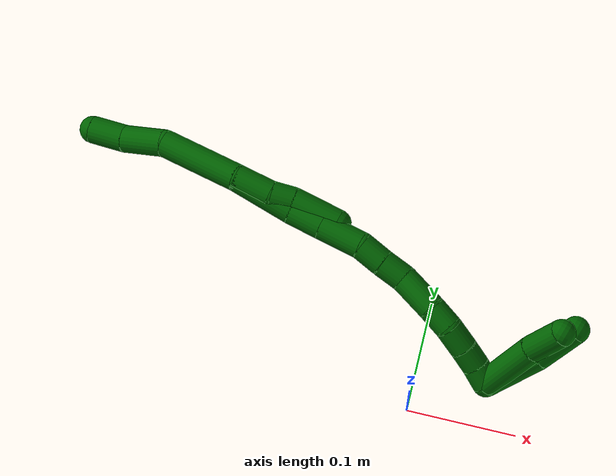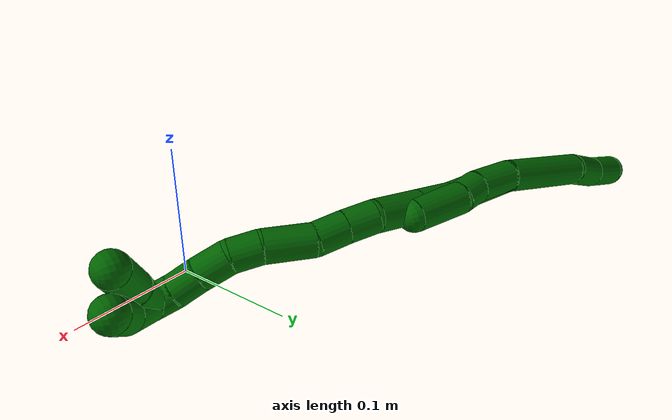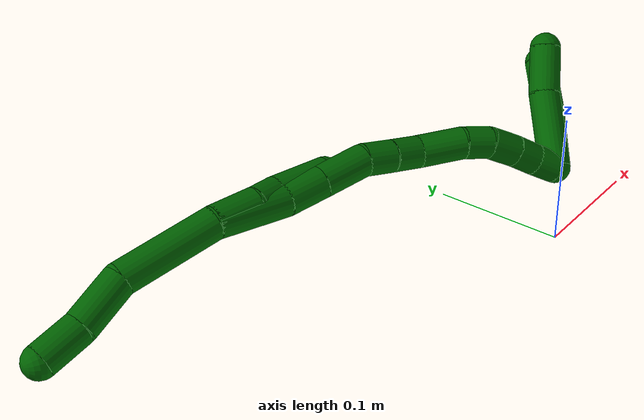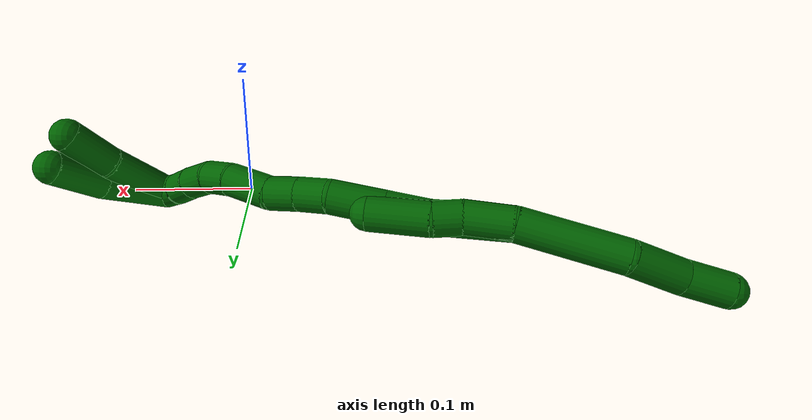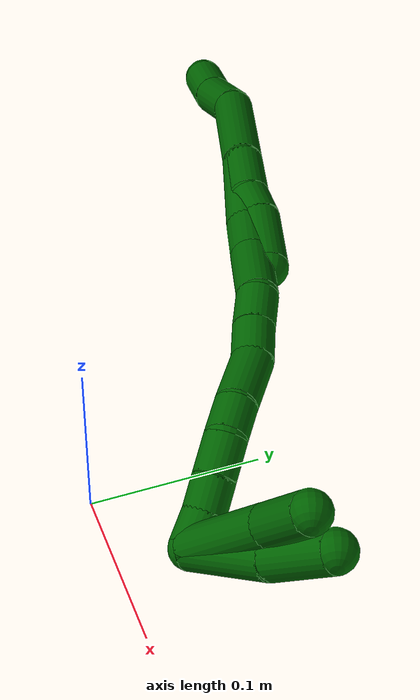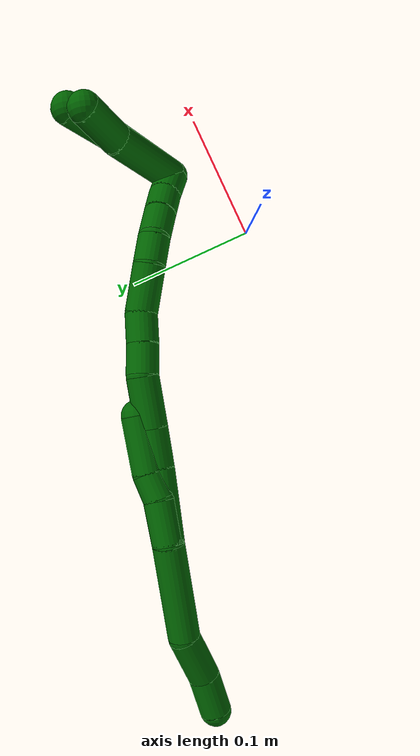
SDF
<sdf version="1.7">
 <world name="default">
  <model name="photoneo_s_sensor">
   <static>1</static>
   <pose>0 0 2 1.57079 1.57079 3.14159</pose>
   <link name="link">
    <inertial><mass>0.1</mass></inertial>
    <sensor name="sensor" type="depth">
     <update_rate>30</update_rate>
     <camera>
      <horizontal_fov>1.22</horizontal_fov>
      <image><width>1920</width><height>1200</height><format>B8G8R8</format></image>
      <clip><near>0.1</near><far>4</far></clip>
      <depth_camera><output>points</output></depth_camera>
     </camera>
     <plugin name="camera_plugin" filename="libgazebo_ros_depth_camera.so">
      <baseline>0.2</baseline>
      <alwaysOn>1</alwaysOn>
      <updateRate>0.0</updateRate>
      <cameraName>camera_ir</cameraName>
      <imageTopicName>/camera/color/image_raw</imageTopicName>
      <cameraInfoTopicName>/camera/color/camera_info</cameraInfoTopicName>
      <depthImageTopicName>/camera/depth/image_raw</depthImageTopicName>
      <depthImageCameraInfoTopicName>/camera/depth/camera_info</depthImageCameraInfoTopicName>
      <pointCloudTopicName>/camera/depth/points</pointCloudTopicName>
      <frameName>fr_optical</frameName>
      <pointCloudCutoff>0.1</pointCloudCutoff>
      <pointCloudCutoffMax>2.0</pointCloudCutoffMax>
      <distortionK1>0</distortionK1>
      <distortionK2>0</distortionK2>
      <distortionK3>0</distortionK3>
      <distortionT1>0</distortionT1>
      <distortionT2>0</distortionT2>
      <CxPrime>0</CxPrime>
      <Cx>0</Cx>
      <Cy>0</Cy>
      <focalLength>0</focalLength>
      <hackBaseline>0</hackBaseline>
     </plugin>
    </sensor>
   </link>
  </model>
  <model name="bin">
   <static>1</static>
   <link name="bottom">
    <collision name="collision-bottom">
     <pose>0 0 -0.01 0 -0 0</pose>
     <geometry><box><size>0.8 0.6 0.02</size></box></geometry>
     <surface>
      <friction><ode><mu>100</mu><mu2>100</mu2></ode></friction>
      <contact><collide_bitmask>65535</collide_bitmask></contact>
     </surface>
    </collision>
   </link>
   <link name="west_wall">
    <collision name="collision-west_wall">
     <pose>-0.41 0 0.1 0 -0 0</pose>
     <geometry><box><size>0.02 0.6 0.2</size></box></geometry>
     <surface>
      <friction><ode><mu>100</mu><mu2>100</mu2></ode></friction>
      <contact><collide_bitmask>65535</collide_bitmask></contact>
     </surface>
    </collision>
   </link>
   <link name="east_wall">
    <collision name="collision-east_wall">
     <pose>0.41 0 0.1 0 -0 0</pose>
     <geometry><box><size>0.02 0.6 0.2</size></box></geometry>
     <surface>
      <friction><ode><mu>100</mu><mu2>100</mu2></ode></friction>
      <contact><collide_bitmask>65535</collide_bitmask></contact>
     </surface>
    </collision>
   </link>
   <link name="south_wall">
    <collision name="collision-south_wall">
     <pose>0 -0.31 0.1 0 -0 0</pose>
     <geometry><box><size>0.8 0.02 0.2</size></box></geometry>
     <surface>
      <friction><ode><mu>100</mu><mu2>100</mu2></ode></friction>
      <contact><collide_bitmask>65535</collide_bitmask></contact>
     </surface>
    </collision>
   </link>
   <link name="north_wall">
    <collision name="collision-north_wall">
     <pose>0 0.31 0.1 0 -0 0</pose>
     <geometry><box><size>0.8 0.02 0.2</size></box></geometry>
     <surface>
      <friction><ode><mu>100</mu><mu2>100</mu2></ode></friction>
      <contact><collide_bitmask>65535</collide_bitmask></contact>
     </surface>
    </collision>
   </link>
  </model>
  <model name="6">
   <static>0</static>
   <link name="6">
    <collision name="collision-cylinder-e_1_2_8">
     <pose>-0.007417 0.006005 0.036634 -0.162486 -0.197194 0.016108</pose>
     <geometry><cylinder><radius>0.0125</radius><length>0.075712</length></cylinder></geometry>
     <surface>
      <friction><ode><mu>1.16</mu><mu2>1.16</mu2><slip1>0</slip1><slip2>0</slip2></ode></friction>
      <contact><ode><kp>1e+06</kp><kd>1</kd><max_vel>0</max_vel><min_depth>0.001</min_depth></ode></contact>
     </surface>
    </collision>
    <visual name="visual-cylinder-e_1_2_8">
     <pose>-0.007417 0.006005 0.036634 -0.162486 -0.197194 0.016108</pose>
     <geometry><cylinder><radius>0.0125</radius><length>0.075712</length></cylinder></geometry>
     <material><ambient>0 0.392157 0.003922 1</ambient></material>
    </visual>
    <collision name="collision-cylinder-e_2_8_9">
     <pose>-0.025252 0.014752 0.090674 -0.156201 -0.533965 0.042804</pose>
     <geometry><cylinder><radius>0.0125</radius><length>0.040942</length></cylinder></geometry>
     <surface>
      <friction><ode><mu>1.16</mu><mu2>1.16</mu2><slip1>0</slip1><slip2>0</slip2></ode></friction>
      <contact><ode><kp>1e+06</kp><kd>1</kd><max_vel>0</max_vel><min_depth>0.001</min_depth></ode></contact>
     </surface>
    </collision>
    <visual name="visual-cylinder-e_2_8_9">
     <pose>-0.025252 0.014752 0.090674 -0.156201 -0.533965 0.042804</pose>
     <geometry><cylinder><radius>0.0125</radius><length>0.040942</length></cylinder></geometry>
     <material><ambient>0 0.392157 0.003922 1</ambient></material>
    </visual>
    <collision name="collision-cylinder-e_3_9_6">
     <pose>-0.041492 0.019417 0.123586 -0.123406 -0.35666 0.022271</pose>
     <geometry><cylinder><radius>0.0125</radius><length>0.033345</length></cylinder></geometry>
     <surface>
      <friction><ode><mu>1.16</mu><mu2>1.16</mu2><slip1>0</slip1><slip2>0</slip2></ode></friction>
      <contact><ode><kp>1e+06</kp><kd>1</kd><max_vel>0</max_vel><min_depth>0.001</min_depth></ode></contact>
     </surface>
    </collision>
    <visual name="visual-cylinder-e_3_9_6">
     <pose>-0.041492 0.019417 0.123586 -0.123406 -0.35666 0.022271</pose>
     <geometry><cylinder><radius>0.0125</radius><length>0.033345</length></cylinder></geometry>
     <material><ambient>0 0.392157 0.003922 1</ambient></material>
    </visual>
    <collision name="collision-cylinder-e_1_2_10">
     <pose>0.001854 -0.000366 -0.01729 3.12044 0.106791 2.75076</pose>
     <geometry><cylinder><radius>0.0125</radius><length>0.034786</length></cylinder></geometry>
     <surface>
      <friction><ode><mu>1.16</mu><mu2>1.16</mu2><slip1>0</slip1><slip2>0</slip2></ode></friction>
      <contact><ode><kp>1e+06</kp><kd>1</kd><max_vel>0</max_vel><min_depth>0.001</min_depth></ode></contact>
     </surface>
    </collision>
    <visual name="visual-cylinder-e_1_2_10">
     <pose>0.001854 -0.000366 -0.01729 3.12044 0.106791 2.75076</pose>
     <geometry><cylinder><radius>0.0125</radius><length>0.034786</length></cylinder></geometry>
     <material><ambient>0 0.392157 0.003922 1</ambient></material>
    </visual>
    <collision name="collision-cylinder-e_2_10_11">
     <pose>0.005659 0.001284 -0.044674 -2.94451 0.187378 -1.52001</pose>
     <geometry><cylinder><radius>0.0125</radius><length>0.020953</length></cylinder></geometry>
     <surface>
      <friction><ode><mu>1.16</mu><mu2>1.16</mu2><slip1>0</slip1><slip2>0</slip2></ode></friction>
      <contact><ode><kp>1e+06</kp><kd>1</kd><max_vel>0</max_vel><min_depth>0.001</min_depth></ode></contact>
     </surface>
    </collision>
    <visual name="visual-cylinder-e_2_10_11">
     <pose>0.005659 0.001284 -0.044674 -2.94451 0.187378 -1.52001</pose>
     <geometry><cylinder><radius>0.0125</radius><length>0.020953</length></cylinder></geometry>
     <material><ambient>0 0.392157 0.003922 1</ambient></material>
    </visual>
    <collision name="collision-cylinder-e_3_11_5">
     <pose>0.009221 0.003466 -0.076839 -3.13403 0.072832 -2.93466</pose>
     <geometry><cylinder><radius>0.0125</radius><length>0.044261</length></cylinder></geometry>
     <surface>
      <friction><ode><mu>1.16</mu><mu2>1.16</mu2><slip1>0</slip1><slip2>0</slip2></ode></friction>
      <contact><ode><kp>1e+06</kp><kd>1</kd><max_vel>0</max_vel><min_depth>0.001</min_depth></ode></contact>
     </surface>
    </collision>
    <visual name="visual-cylinder-e_3_11_5">
     <pose>0.009221 0.003466 -0.076839 -3.13403 0.072832 -2.93466</pose>
     <geometry><cylinder><radius>0.0125</radius><length>0.044261</length></cylinder></geometry>
     <material><ambient>0 0.392157 0.003922 1</ambient></material>
    </visual>
    <collision name="collision-cylinder-e_1_2_12">
     <pose>9e-06 -1.6e-05 -0.02892 3.14104 0.000312 1.02087</pose>
     <geometry><cylinder><radius>0.0125</radius><length>0.05784</length></cylinder></geometry>
     <surface>
      <friction><ode><mu>1.16</mu><mu2>1.16</mu2><slip1>0</slip1><slip2>0</slip2></ode></friction>
      <contact><ode><kp>1e+06</kp><kd>1</kd><max_vel>0</max_vel><min_depth>0.001</min_depth></ode></contact>
     </surface>
    </collision>
    <visual name="visual-cylinder-e_1_2_12">
     <pose>9e-06 -1.6e-05 -0.02892 3.14104 0.000312 1.02087</pose>
     <geometry><cylinder><radius>0.0125</radius><length>0.05784</length></cylinder></geometry>
     <material><ambient>0 0.392157 0.003922 1</ambient></material>
    </visual>
    <collision name="collision-cylinder-e_2_12_13">
     <pose>0.002056 -0.001473 -0.073329 3.04887 0.130294 1.90528</pose>
     <geometry><cylinder><radius>0.0125</radius><length>0.031377</length></cylinder></geometry>
     <surface>
      <friction><ode><mu>1.16</mu><mu2>1.16</mu2><slip1>0</slip1><slip2>0</slip2></ode></friction>
      <contact><ode><kp>1e+06</kp><kd>1</kd><max_vel>0</max_vel><min_depth>0.001</min_depth></ode></contact>
     </surface>
    </collision>
    <visual name="visual-cylinder-e_2_12_13">
     <pose>0.002056 -0.001473 -0.073329 3.04887 0.130294 1.90528</pose>
     <geometry><cylinder><radius>0.0125</radius><length>0.031377</length></cylinder></geometry>
     <material><ambient>0 0.392157 0.003922 1</ambient></material>
    </visual>
    <collision name="collision-cylinder-e_3_13_14">
     <pose>0.00685 -0.004662 -0.108297 3.05203 0.139965 2.00396</pose>
     <geometry><cylinder><radius>0.0125</radius><length>0.039501</length></cylinder></geometry>
     <surface>
      <friction><ode><mu>1.16</mu><mu2>1.16</mu2><slip1>0</slip1><slip2>0</slip2></ode></friction>
      <contact><ode><kp>1e+06</kp><kd>1</kd><max_vel>0</max_vel><min_depth>0.001</min_depth></ode></contact>
     </surface>
    </collision>
    <visual name="visual-cylinder-e_3_13_14">
     <pose>0.00685 -0.004662 -0.108297 3.05203 0.139965 2.00396</pose>
     <geometry><cylinder><radius>0.0125</radius><length>0.039501</length></cylinder></geometry>
     <material><ambient>0 0.392157 0.003922 1</ambient></material>
    </visual>
    <collision name="collision-cylinder-e_4_14_15">
     <pose>0.007814 -0.006923 -0.139606 3.09838 -0.150152 -2.58208</pose>
     <geometry><cylinder><radius>0.0125</radius><length>0.023951</length></cylinder></geometry>
     <surface>
      <friction><ode><mu>1.16</mu><mu2>1.16</mu2><slip1>0</slip1><slip2>0</slip2></ode></friction>
      <contact><ode><kp>1e+06</kp><kd>1</kd><max_vel>0</max_vel><min_depth>0.001</min_depth></ode></contact>
     </surface>
    </collision>
    <visual name="visual-cylinder-e_4_14_15">
     <pose>0.007814 -0.006923 -0.139606 3.09838 -0.150152 -2.58208</pose>
     <geometry><cylinder><radius>0.0125</radius><length>0.023951</length></cylinder></geometry>
     <material><ambient>0 0.392157 0.003922 1</ambient></material>
    </visual>
    <collision name="collision-cylinder-e_5_15_16">
     <pose>0.004574 -0.007303 -0.163257 -3.13048 -0.121918 2.96009</pose>
     <geometry><cylinder><radius>0.0125</radius><length>0.023822</length></cylinder></geometry>
     <surface>
      <friction><ode><mu>1.16</mu><mu2>1.16</mu2><slip1>0</slip1><slip2>0</slip2></ode></friction>
      <contact><ode><kp>1e+06</kp><kd>1</kd><max_vel>0</max_vel><min_depth>0.001</min_depth></ode></contact>
     </surface>
    </collision>
    <visual name="visual-cylinder-e_5_15_16">
     <pose>0.004574 -0.007303 -0.163257 -3.13048 -0.121918 2.96009</pose>
     <geometry><cylinder><radius>0.0125</radius><length>0.023822</length></cylinder></geometry>
     <material><ambient>0 0.392157 0.003922 1</ambient></material>
    </visual>
    <collision name="collision-cylinder-e_6_16_17">
     <pose>0.000212 -0.01201 -0.192707 2.87374 -0.158039 -1.06268</pose>
     <geometry><cylinder><radius>0.0125</radius><length>0.037021</length></cylinder></geometry>
     <surface>
      <friction><ode><mu>1.16</mu><mu2>1.16</mu2><slip1>0</slip1><slip2>0</slip2></ode></friction>
      <contact><ode><kp>1e+06</kp><kd>1</kd><max_vel>0</max_vel><min_depth>0.001</min_depth></ode></contact>
     </surface>
    </collision>
    <visual name="visual-cylinder-e_6_16_17">
     <pose>0.000212 -0.01201 -0.192707 2.87374 -0.158039 -1.06268</pose>
     <geometry><cylinder><radius>0.0125</radius><length>0.037021</length></cylinder></geometry>
     <material><ambient>0 0.392157 0.003922 1</ambient></material>
    </visual>
    <collision name="collision-cylinder-e_7_17_18">
     <pose>-0.005943 -0.018157 -0.220866 3.0179 -0.296503 -2.35548</pose>
     <geometry><cylinder><radius>0.0125</radius><length>0.022191</length></cylinder></geometry>
     <surface>
      <friction><ode><mu>1.16</mu><mu2>1.16</mu2><slip1>0</slip1><slip2>0</slip2></ode></friction>
      <contact><ode><kp>1e+06</kp><kd>1</kd><max_vel>0</max_vel><min_depth>0.001</min_depth></ode></contact>
     </surface>
    </collision>
    <visual name="visual-cylinder-e_7_17_18">
     <pose>-0.005943 -0.018157 -0.220866 3.0179 -0.296503 -2.35548</pose>
     <geometry><cylinder><radius>0.0125</radius><length>0.022191</length></cylinder></geometry>
     <material><ambient>0 0.392157 0.003922 1</ambient></material>
    </visual>
    <collision name="collision-cylinder-e_8_18_19">
     <pose>-0.015125 -0.01843 -0.241694 -3.04136 -0.52104 2.76962</pose>
     <geometry><cylinder><radius>0.0125</radius><length>0.023869</length></cylinder></geometry>
     <surface>
      <friction><ode><mu>1.16</mu><mu2>1.16</mu2><slip1>0</slip1><slip2>0</slip2></ode></friction>
      <contact><ode><kp>1e+06</kp><kd>1</kd><max_vel>0</max_vel><min_depth>0.001</min_depth></ode></contact>
     </surface>
    </collision>
    <visual name="visual-cylinder-e_8_18_19">
     <pose>-0.015125 -0.01843 -0.241694 -3.04136 -0.52104 2.76962</pose>
     <geometry><cylinder><radius>0.0125</radius><length>0.023869</length></cylinder></geometry>
     <material><ambient>0 0.392157 0.003922 1</ambient></material>
    </visual>
    <collision name="collision-cylinder-e_9_19_20">
     <pose>-0.026577 -0.016037 -0.260481 -2.98302 -0.570102 2.61205</pose>
     <geometry><cylinder><radius>0.0125</radius><length>0.020422</length></cylinder></geometry>
     <surface>
      <friction><ode><mu>1.16</mu><mu2>1.16</mu2><slip1>0</slip1><slip2>0</slip2></ode></friction>
      <contact><ode><kp>1e+06</kp><kd>1</kd><max_vel>0</max_vel><min_depth>0.001</min_depth></ode></contact>
     </surface>
    </collision>
    <visual name="visual-cylinder-e_9_19_20">
     <pose>-0.026577 -0.016037 -0.260481 -2.98302 -0.570102 2.61205</pose>
     <geometry><cylinder><radius>0.0125</radius><length>0.020422</length></cylinder></geometry>
     <material><ambient>0 0.392157 0.003922 1</ambient></material>
    </visual>
    <collision name="collision-cylinder-e_10_20_1">
     <pose>-0.037747 -0.014335 -0.277211 -3.09979 -0.6013 3.00694</pose>
     <geometry><cylinder><radius>0.0125</radius><length>0.020006</length></cylinder></geometry>
     <surface>
      <friction><ode><mu>1.16</mu><mu2>1.16</mu2><slip1>0</slip1><slip2>0</slip2></ode></friction>
      <contact><ode><kp>1e+06</kp><kd>1</kd><max_vel>0</max_vel><min_depth>0.001</min_depth></ode></contact>
     </surface>
    </collision>
    <visual name="visual-cylinder-e_10_20_1">
     <pose>-0.037747 -0.014335 -0.277211 -3.09979 -0.6013 3.00694</pose>
     <geometry><cylinder><radius>0.0125</radius><length>0.020006</length></cylinder></geometry>
     <material><ambient>0 0.392157 0.003922 1</ambient></material>
    </visual>
    <collision name="collision-cylinder-e_1_1_21">
     <pose>-0.014263 -0.016067 -0.294936 2.9261 1.2492 2.84372</pose>
     <geometry><cylinder><radius>0.0125</radius><length>0.061435</length></cylinder></geometry>
     <surface>
      <friction><ode><mu>1.16</mu><mu2>1.16</mu2><slip1>0</slip1><slip2>0</slip2></ode></friction>
      <contact><ode><kp>1e+06</kp><kd>1</kd><max_vel>0</max_vel><min_depth>0.001</min_depth></ode></contact>
     </surface>
    </collision>
    <visual name="visual-cylinder-e_1_1_21">
     <pose>-0.014263 -0.016067 -0.294936 2.9261 1.2492 2.84372</pose>
     <geometry><cylinder><radius>0.0125</radius><length>0.061435</length></cylinder></geometry>
     <material><ambient>0 0.392157 0.003922 1</ambient></material>
    </visual>
    <collision name="collision-cylinder-e_2_21_4">
     <pose>0.032194 -0.021938 -0.312012 2.67791 1.11505 2.41767</pose>
     <geometry><cylinder><radius>0.0125</radius><length>0.038565</length></cylinder></geometry>
     <surface>
      <friction><ode><mu>1.16</mu><mu2>1.16</mu2><slip1>0</slip1><slip2>0</slip2></ode></friction>
      <contact><ode><kp>1e+06</kp><kd>1</kd><max_vel>0</max_vel><min_depth>0.001</min_depth></ode></contact>
     </surface>
    </collision>
    <visual name="visual-cylinder-e_2_21_4">
     <pose>0.032194 -0.021938 -0.312012 2.67791 1.11505 2.41767</pose>
     <geometry><cylinder><radius>0.0125</radius><length>0.038565</length></cylinder></geometry>
     <material><ambient>0 0.392157 0.003922 1</ambient></material>
    </visual>
    <collision name="collision-cylinder-e_1_1_22">
     <pose>-0.019598 -0.009453 -0.299434 -2.82782 1.01765 -2.58893</pose>
     <geometry><cylinder><radius>0.0125</radius><length>0.055959</length></cylinder></geometry>
     <surface>
      <friction><ode><mu>1.16</mu><mu2>1.16</mu2><slip1>0</slip1><slip2>0</slip2></ode></friction>
      <contact><ode><kp>1e+06</kp><kd>1</kd><max_vel>0</max_vel><min_depth>0.001</min_depth></ode></contact>
     </surface>
    </collision>
    <visual name="visual-cylinder-e_1_1_22">
     <pose>-0.019598 -0.009453 -0.299434 -2.82782 1.01765 -2.58893</pose>
     <geometry><cylinder><radius>0.0125</radius><length>0.055959</length></cylinder></geometry>
     <material><ambient>0 0.392157 0.003922 1</ambient></material>
    </visual>
    <collision name="collision-cylinder-e_2_22_3">
     <pose>0.024712 -0.003598 -0.321338 -2.9767 1.19748 -2.90054</pose>
     <geometry><cylinder><radius>0.0125</radius><length>0.044041</length></cylinder></geometry>
     <surface>
      <friction><ode><mu>1.16</mu><mu2>1.16</mu2><slip1>0</slip1><slip2>0</slip2></ode></friction>
      <contact><ode><kp>1e+06</kp><kd>1</kd><max_vel>0</max_vel><min_depth>0.001</min_depth></ode></contact>
     </surface>
    </collision>
    <visual name="visual-cylinder-e_2_22_3">
     <pose>0.024712 -0.003598 -0.321338 -2.9767 1.19748 -2.90054</pose>
     <geometry><cylinder><radius>0.0125</radius><length>0.044041</length></cylinder></geometry>
     <material><ambient>0 0.392157 0.003922 1</ambient></material>
    </visual>
    <collision name="collision-sphere-3">
     <pose>0.045216 -0.00228 -0.32926 0 -0 0</pose>
     <geometry><sphere><radius>0.0125</radius></sphere></geometry>
     <surface>
      <friction><ode><mu>1.16</mu><mu2>1.16</mu2><slip1>0</slip1><slip2>0</slip2></ode></friction>
      <contact><ode><kp>1e+06</kp><kd>1</kd><max_vel>0</max_vel><min_depth>0.001</min_depth></ode></contact>
     </surface>
    </collision>
    <visual name="visual-sphere-3">
     <pose>0.045216 -0.00228 -0.32926 0 -0 0</pose>
     <geometry><sphere><radius>0.0125</radius></sphere></geometry>
     <material><ambient>0 0.392157 0.003922 1</ambient></material>
    </visual>
    <collision name="collision-sphere-22">
     <pose>0.004209 -0.004916 -0.313416 0 -0 0</pose>
     <geometry><sphere><radius>0.0125</radius></sphere></geometry>
     <surface>
      <friction><ode><mu>1.16</mu><mu2>1.16</mu2><slip1>0</slip1><slip2>0</slip2></ode></friction>
      <contact><ode><kp>1e+06</kp><kd>1</kd><max_vel>0</max_vel><min_depth>0.001</min_depth></ode></contact>
     </surface>
    </collision>
    <visual name="visual-sphere-22">
     <pose>0.004209 -0.004916 -0.313416 0 -0 0</pose>
     <geometry><sphere><radius>0.0125</radius></sphere></geometry>
     <material><ambient>0 0.392157 0.003922 1</ambient></material>
    </visual>
    <collision name="collision-sphere-4">
     <pose>0.049509 -0.025734 -0.319603 0 -0 0</pose>
     <geometry><sphere><radius>0.0125</radius></sphere></geometry>
     <surface>
      <friction><ode><mu>1.16</mu><mu2>1.16</mu2><slip1>0</slip1><slip2>0</slip2></ode></friction>
      <contact><ode><kp>1e+06</kp><kd>1</kd><max_vel>0</max_vel><min_depth>0.001</min_depth></ode></contact>
     </surface>
    </collision>
    <visual name="visual-sphere-4">
     <pose>0.049509 -0.025734 -0.319603 0 -0 0</pose>
     <geometry><sphere><radius>0.0125</radius></sphere></geometry>
     <material><ambient>0 0.392157 0.003922 1</ambient></material>
    </visual>
    <collision name="collision-sphere-21">
     <pose>0.01488 -0.018143 -0.304421 0 -0 0</pose>
     <geometry><sphere><radius>0.0125</radius></sphere></geometry>
     <surface>
      <friction><ode><mu>1.16</mu><mu2>1.16</mu2><slip1>0</slip1><slip2>0</slip2></ode></friction>
      <contact><ode><kp>1e+06</kp><kd>1</kd><max_vel>0</max_vel><min_depth>0.001</min_depth></ode></contact>
     </surface>
    </collision>
    <visual name="visual-sphere-21">
     <pose>0.01488 -0.018143 -0.304421 0 -0 0</pose>
     <geometry><sphere><radius>0.0125</radius></sphere></geometry>
     <material><ambient>0 0.392157 0.003922 1</ambient></material>
    </visual>
    <collision name="collision-sphere-1">
     <pose>-0.043406 -0.01399 -0.285452 0 -0 0</pose>
     <geometry><sphere><radius>0.0125</radius></sphere></geometry>
     <surface>
      <friction><ode><mu>1.16</mu><mu2>1.16</mu2><slip1>0</slip1><slip2>0</slip2></ode></friction>
      <contact><ode><kp>1e+06</kp><kd>1</kd><max_vel>0</max_vel><min_depth>0.001</min_depth></ode></contact>
     </surface>
    </collision>
    <visual name="visual-sphere-1">
     <pose>-0.043406 -0.01399 -0.285452 0 -0 0</pose>
     <geometry><sphere><radius>0.0125</radius></sphere></geometry>
     <material><ambient>0 0.392157 0.003922 1</ambient></material>
    </visual>
    <collision name="collision-sphere-11">
     <pose>0.007611 0.003299 -0.054768 0 -0 0</pose>
     <geometry><sphere><radius>0.0125</radius></sphere></geometry>
     <surface>
      <friction><ode><mu>1.16</mu><mu2>1.16</mu2><slip1>0</slip1><slip2>0</slip2></ode></friction>
      <contact><ode><kp>1e+06</kp><kd>1</kd><max_vel>0</max_vel><min_depth>0.001</min_depth></ode></contact>
     </surface>
    </collision>
    <visual name="visual-sphere-11">
     <pose>0.007611 0.003299 -0.054768 0 -0 0</pose>
     <geometry><sphere><radius>0.0125</radius></sphere></geometry>
     <material><ambient>0 0.392157 0.003922 1</ambient></material>
    </visual>
    <collision name="collision-sphere-10">
     <pose>0.003708 -0.000732 -0.03458 0 -0 0</pose>
     <geometry><sphere><radius>0.0125</radius></sphere></geometry>
     <surface>
      <friction><ode><mu>1.16</mu><mu2>1.16</mu2><slip1>0</slip1><slip2>0</slip2></ode></friction>
      <contact><ode><kp>1e+06</kp><kd>1</kd><max_vel>0</max_vel><min_depth>0.001</min_depth></ode></contact>
     </surface>
    </collision>
    <visual name="visual-sphere-10">
     <pose>0.003708 -0.000732 -0.03458 0 -0 0</pose>
     <geometry><sphere><radius>0.0125</radius></sphere></geometry>
     <material><ambient>0 0.392157 0.003922 1</ambient></material>
    </visual>
    <collision name="collision-sphere-6">
     <pose>-0.047313 0.02134 0.13909 0 -0 0</pose>
     <geometry><sphere><radius>0.0125</radius></sphere></geometry>
     <surface>
      <friction><ode><mu>1.16</mu><mu2>1.16</mu2><slip1>0</slip1><slip2>0</slip2></ode></friction>
      <contact><ode><kp>1e+06</kp><kd>1</kd><max_vel>0</max_vel><min_depth>0.001</min_depth></ode></contact>
     </surface>
    </collision>
    <visual name="visual-sphere-6">
     <pose>-0.047313 0.02134 0.13909 0 -0 0</pose>
     <geometry><sphere><radius>0.0125</radius></sphere></geometry>
     <material><ambient>0 0.392157 0.003922 1</ambient></material>
    </visual>
    <collision name="collision-sphere-9">
     <pose>-0.035671 0.017493 0.108081 0 -0 0</pose>
     <geometry><sphere><radius>0.0125</radius></sphere></geometry>
     <surface>
      <friction><ode><mu>1.16</mu><mu2>1.16</mu2><slip1>0</slip1><slip2>0</slip2></ode></friction>
      <contact><ode><kp>1e+06</kp><kd>1</kd><max_vel>0</max_vel><min_depth>0.001</min_depth></ode></contact>
     </surface>
    </collision>
    <visual name="visual-sphere-9">
     <pose>-0.035671 0.017493 0.108081 0 -0 0</pose>
     <geometry><sphere><radius>0.0125</radius></sphere></geometry>
     <material><ambient>0 0.392157 0.003922 1</ambient></material>
    </visual>
    <collision name="collision-sphere-2">
     <geometry><sphere><radius>0.0125</radius></sphere></geometry>
     <surface>
      <friction><ode><mu>1.16</mu><mu2>1.16</mu2><slip1>0</slip1><slip2>0</slip2></ode></friction>
      <contact><ode><kp>1e+06</kp><kd>1</kd><max_vel>0</max_vel><min_depth>0.001</min_depth></ode></contact>
     </surface>
    </collision>
    <visual name="visual-sphere-2">
     <geometry><sphere><radius>0.0125</radius></sphere></geometry>
     <material><ambient>0 0.392157 0.003922 1</ambient></material>
    </visual>
    <collision name="collision-sphere-19">
     <pose>-0.021066 -0.017395 -0.251993 0 -0 0</pose>
     <geometry><sphere><radius>0.0125</radius></sphere></geometry>
     <surface>
      <friction><ode><mu>1.16</mu><mu2>1.16</mu2><slip1>0</slip1><slip2>0</slip2></ode></friction>
      <contact><ode><kp>1e+06</kp><kd>1</kd><max_vel>0</max_vel><min_depth>0.001</min_depth></ode></contact>
     </surface>
    </collision>
    <visual name="visual-sphere-19">
     <pose>-0.021066 -0.017395 -0.251993 0 -0 0</pose>
     <geometry><sphere><radius>0.0125</radius></sphere></geometry>
     <material><ambient>0 0.392157 0.003922 1</ambient></material>
    </visual>
    <collision name="collision-sphere-8">
     <pose>-0.014833 0.012011 0.073267 0 -0 0</pose>
     <geometry><sphere><radius>0.0125</radius></sphere></geometry>
     <surface>
      <friction><ode><mu>1.16</mu><mu2>1.16</mu2><slip1>0</slip1><slip2>0</slip2></ode></friction>
      <contact><ode><kp>1e+06</kp><kd>1</kd><max_vel>0</max_vel><min_depth>0.001</min_depth></ode></contact>
     </surface>
    </collision>
    <visual name="visual-sphere-8">
     <pose>-0.014833 0.012011 0.073267 0 -0 0</pose>
     <geometry><sphere><radius>0.0125</radius></sphere></geometry>
     <material><ambient>0 0.392157 0.003922 1</ambient></material>
    </visual>
    <collision name="collision-sphere-5">
     <pose>0.010832 0.003633 -0.09891 0 -0 0</pose>
     <geometry><sphere><radius>0.0125</radius></sphere></geometry>
     <surface>
      <friction><ode><mu>1.16</mu><mu2>1.16</mu2><slip1>0</slip1><slip2>0</slip2></ode></friction>
      <contact><ode><kp>1e+06</kp><kd>1</kd><max_vel>0</max_vel><min_depth>0.001</min_depth></ode></contact>
     </surface>
    </collision>
    <visual name="visual-sphere-5">
     <pose>0.010832 0.003633 -0.09891 0 -0 0</pose>
     <geometry><sphere><radius>0.0125</radius></sphere></geometry>
     <material><ambient>0 0.392157 0.003922 1</ambient></material>
    </visual>
    <collision name="collision-sphere-12">
     <pose>1.8e-05 -3.2e-05 -0.05784 0 -0 0</pose>
     <geometry><sphere><radius>0.0125</radius></sphere></geometry>
     <surface>
      <friction><ode><mu>1.16</mu><mu2>1.16</mu2><slip1>0</slip1><slip2>0</slip2></ode></friction>
      <contact><ode><kp>1e+06</kp><kd>1</kd><max_vel>0</max_vel><min_depth>0.001</min_depth></ode></contact>
     </surface>
    </collision>
    <visual name="visual-sphere-12">
     <pose>1.8e-05 -3.2e-05 -0.05784 0 -0 0</pose>
     <geometry><sphere><radius>0.0125</radius></sphere></geometry>
     <material><ambient>0 0.392157 0.003922 1</ambient></material>
    </visual>
    <collision name="collision-sphere-13">
     <pose>0.004095 -0.002913 -0.088817 0 -0 0</pose>
     <geometry><sphere><radius>0.0125</radius></sphere></geometry>
     <surface>
      <friction><ode><mu>1.16</mu><mu2>1.16</mu2><slip1>0</slip1><slip2>0</slip2></ode></friction>
      <contact><ode><kp>1e+06</kp><kd>1</kd><max_vel>0</max_vel><min_depth>0.001</min_depth></ode></contact>
     </surface>
    </collision>
    <visual name="visual-sphere-13">
     <pose>0.004095 -0.002913 -0.088817 0 -0 0</pose>
     <geometry><sphere><radius>0.0125</radius></sphere></geometry>
     <material><ambient>0 0.392157 0.003922 1</ambient></material>
    </visual>
    <collision name="collision-sphere-14">
     <pose>0.009605 -0.006411 -0.127776 0 -0 0</pose>
     <geometry><sphere><radius>0.0125</radius></sphere></geometry>
     <surface>
      <friction><ode><mu>1.16</mu><mu2>1.16</mu2><slip1>0</slip1><slip2>0</slip2></ode></friction>
      <contact><ode><kp>1e+06</kp><kd>1</kd><max_vel>0</max_vel><min_depth>0.001</min_depth></ode></contact>
     </surface>
    </collision>
    <visual name="visual-sphere-14">
     <pose>0.009605 -0.006411 -0.127776 0 -0 0</pose>
     <geometry><sphere><radius>0.0125</radius></sphere></geometry>
     <material><ambient>0 0.392157 0.003922 1</ambient></material>
    </visual>
    <collision name="collision-sphere-15">
     <pose>0.006023 -0.007434 -0.151435 0 -0 0</pose>
     <geometry><sphere><radius>0.0125</radius></sphere></geometry>
     <surface>
      <friction><ode><mu>1.16</mu><mu2>1.16</mu2><slip1>0</slip1><slip2>0</slip2></ode></friction>
      <contact><ode><kp>1e+06</kp><kd>1</kd><max_vel>0</max_vel><min_depth>0.001</min_depth></ode></contact>
     </surface>
    </collision>
    <visual name="visual-sphere-15">
     <pose>0.006023 -0.007434 -0.151435 0 -0 0</pose>
     <geometry><sphere><radius>0.0125</radius></sphere></geometry>
     <material><ambient>0 0.392157 0.003922 1</ambient></material>
    </visual>
    <collision name="collision-sphere-16">
     <pose>0.003126 -0.007172 -0.175079 0 -0 0</pose>
     <geometry><sphere><radius>0.0125</radius></sphere></geometry>
     <surface>
      <friction><ode><mu>1.16</mu><mu2>1.16</mu2><slip1>0</slip1><slip2>0</slip2></ode></friction>
      <contact><ode><kp>1e+06</kp><kd>1</kd><max_vel>0</max_vel><min_depth>0.001</min_depth></ode></contact>
     </surface>
    </collision>
    <visual name="visual-sphere-16">
     <pose>0.003126 -0.007172 -0.175079 0 -0 0</pose>
     <geometry><sphere><radius>0.0125</radius></sphere></geometry>
     <material><ambient>0 0.392157 0.003922 1</ambient></material>
    </visual>
    <collision name="collision-sphere-17">
     <pose>-0.002701 -0.016848 -0.210336 0 -0 0</pose>
     <geometry><sphere><radius>0.0125</radius></sphere></geometry>
     <surface>
      <friction><ode><mu>1.16</mu><mu2>1.16</mu2><slip1>0</slip1><slip2>0</slip2></ode></friction>
      <contact><ode><kp>1e+06</kp><kd>1</kd><max_vel>0</max_vel><min_depth>0.001</min_depth></ode></contact>
     </surface>
    </collision>
    <visual name="visual-sphere-17">
     <pose>-0.002701 -0.016848 -0.210336 0 -0 0</pose>
     <geometry><sphere><radius>0.0125</radius></sphere></geometry>
     <material><ambient>0 0.392157 0.003922 1</ambient></material>
    </visual>
    <collision name="collision-sphere-18">
     <pose>-0.009185 -0.019466 -0.231396 0 -0 0</pose>
     <geometry><sphere><radius>0.0125</radius></sphere></geometry>
     <surface>
      <friction><ode><mu>1.16</mu><mu2>1.16</mu2><slip1>0</slip1><slip2>0</slip2></ode></friction>
      <contact><ode><kp>1e+06</kp><kd>1</kd><max_vel>0</max_vel><min_depth>0.001</min_depth></ode></contact>
     </surface>
    </collision>
    <visual name="visual-sphere-18">
     <pose>-0.009185 -0.019466 -0.231396 0 -0 0</pose>
     <geometry><sphere><radius>0.0125</radius></sphere></geometry>
     <material><ambient>0 0.392157 0.003922 1</ambient></material>
    </visual>
    <collision name="collision-sphere-20">
     <pose>-0.032088 -0.01468 -0.268969 0 -0 0</pose>
     <geometry><sphere><radius>0.0125</radius></sphere></geometry>
     <surface>
      <friction><ode><mu>1.16</mu><mu2>1.16</mu2><slip1>0</slip1><slip2>0</slip2></ode></friction>
      <contact><ode><kp>1e+06</kp><kd>1</kd><max_vel>0</max_vel><min_depth>0.001</min_depth></ode></contact>
     </surface>
    </collision>
    <visual name="visual-sphere-20">
     <pose>-0.032088 -0.01468 -0.268969 0 -0 0</pose>
     <geometry><sphere><radius>0.0125</radius></sphere></geometry>
     <material><ambient>0 0.392157 0.003922 1</ambient></material>
    </visual>
    <inertial>
     <pose>-0.004243 -0.00416 -0.132727 0 -0 0</pose>
     <mass>0.75</mass>
     <inertia>
      <ixx>4.1e-05</ixx>
      <ixy>0</ixy>
      <ixz>0</ixz>
      <iyy>0.000136</iyy>
      <iyz>0</iyz>
      <izz>-6.6e-05</izz>
     </inertia>
    </inertial>
   </link>
   <pose>-0.195445 0.161171 0.053315 -1.49126 -0.752919 1.2146</pose>
  </model>
 </world>
</sdf>
